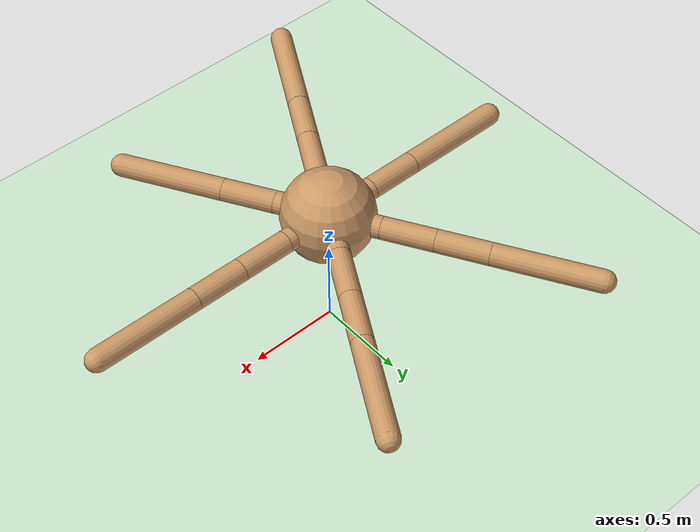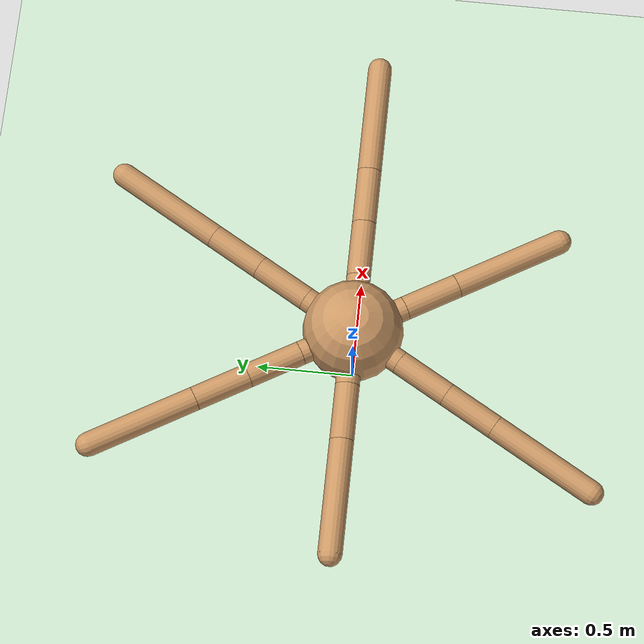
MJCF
<mujoco model="symetric_hexapod">
	<compiler angle="degree" coordinate="local" inertiafromgeom="true"/>
	<option integrator="RK4" timestep="0.01"/>

	<default>
		<joint armature="1" damping="1" limited="true"/>
		<geom conaffinity="0" condim="3" density="5.0" friction="1 0.5 0.5" margin="0.01" rgba="0.8 0.6 0.4 1"/>
	</default>

	<asset>
		<texture builtin="gradient" height="100" rgb1="1 1 1" rgb2="0 0 0" type="skybox" width="100"/>
		<texture builtin="flat" height="1278" mark="cross" markrgb="1 1 1" name="texgeom" random="0.01" rgb1="0.8 0.6 0.4" rgb2="0.8 0.6 0.4" type="cube" width="127"/>
		<texture builtin="checker" height="100" name="texplane" rgb1="1 1 1" rgb2="1 1 1" type="2d" width="100"/>
		<material name="MatPlane" reflectance="0.5" shininess="1" specular="1" texrepeat="60 60" texture="texplane"/>
		<material name="geom" texture="texgeom" texuniform="true"/>
	</asset>

	<worldbody>
		<light cutoff="100" diffuse="1 1 1" dir="-0 0 -1.3" directional="true" exponent="1" pos="0 0 1.3" specular=".1 .1 .1" castshadow="false"/>
		<geom conaffinity="1" condim="3" material="MatPlane" name="floor" pos="0 0 0" rgba="0.8 0.9 0.8 1" size="40 40 40" type="plane"/>

		<body name="torso" pos="0 0 0.75">
			<camera name="track" mode="trackcom" pos="0 -3 0.3" xyaxes="1 0 0 0 0 1"/>
			<geom name="torso_geom" pos="0 0 0" size="0.25" type="sphere"/>
			<joint armature="0" damping="0" limited="false" margin="0.01" name="root" pos="0 0 0" type="free"/>

			<body name="front_left_leg" pos="0 0 0">
				<geom fromto="0.0 0.0 0.0 0.1414 0.2449 0.0" name="leg_base_1" size="0.06" type="capsule"/>
				<body name="aux_1" pos="0.1414 0.2449 0">
					<joint axis="0 0 1" name="hip_1" pos="0.0 0.0 0.0" range="-30 30" type="hinge"/>
					<geom fromto="0.0 0.0 0.0 0.1414 0.2449 0.0" name="leg_geom_1" size="0.06" type="capsule"/>
					<body name="extra_1" pos="0.1414 0.2449 0">
						<joint axis="-1 0.5773 0" name="extra_joint_1" pos="0.0 0.0 0.0" range="-30 30" type="hinge"/>
						<geom fromto="0.0 0.0 0.0 0.1414 0.2449 0.0" name="extra_geom_1" size="0.06" type="capsule"/>
						<body pos="0.1414 0.2449 0">
							<joint axis="-1 0.5773 0" name="ankle_1" pos="0.0 0.0 0.0" range="10 90" type="hinge"/>
							<geom fromto="0.0 0.0 0.0 0.2828 0.4898 0.0" name="ankle_geom_1" size="0.06" type="capsule"/>
						</body>
					</body>
				</body>
			</body>

			<body name="mid_left_leg" pos="0 0 0">
				<geom fromto="0.0 0.0 0.0 0.2828 0.0 0.0" name="leg_base_2" size="0.06" type="capsule"/>
				<body name="aux_2" pos="0.2828 0.0 0">
					<joint axis="0 0 1" name="hip_2" pos="0.0 0.0 0.0" range="-30 30" type="hinge"/>
					<geom fromto="0.0 0.0 0.0 0.2828 0.0 0.0" name="leg_geom_2" size="0.06" type="capsule"/>
					<body name="extra_2" pos="0.2828 0.0 0">
						<joint axis="0 1 0" name="extra_joint_2" pos="0.0 0.0 0.0" range="-30 30" type="hinge"/>
						<geom fromto="0.0 0.0 0.0 0.2828 0.0 0.0" name="extra_geom_2" size="0.06" type="capsule"/>
						<body pos="0.2828 0.0 0">
							<joint axis="0 1 0" name="ankle_2" pos="0.0 0.0 0.0" range="10 90" type="hinge"/>
							<geom fromto="0.0 0.0 0.0 0.5656 0.0 0.0" name="ankle_geom_2" size="0.06" type="capsule"/>
						</body>
					</body>
				</body>
			</body>

			<body name="back_left_leg" pos="0 0 0">
				<geom fromto="0.0 0.0 0.0 0.1414 -0.2449 0.0" name="leg_base_3" size="0.06" type="capsule"/>
				<body name="aux_3" pos="0.1414 -0.2449 0">
					<joint axis="0 0 1" name="hip_3" pos="0.0 0.0 0.0" range="-30 30" type="hinge"/>
					<geom fromto="0.0 0.0 0.0 0.1414 -0.2449 0.0" name="leg_geom_3" size="0.06" type="capsule"/>
					<body pos="0.1414 -0.2449 0">
						<joint axis="1 0.5773 0" name="ankle_3" pos="0.0 0.0 0.0" range="10 90" type="hinge"/>
						<geom fromto="0.0 0.0 0.0 0.2828 -0.4898 0.0" name="ankle_geom_3" size="0.06" type="capsule"/>
					</body>
				</body>
			</body>

			<body name="back_right_leg" pos="0 0 0">
				<geom fromto="0.0 0.0 0.0 -0.1414 -0.2449 0.0" name="leg_base_4" size="0.06" type="capsule"/>
				<body name="aux_4" pos="-0.1414 -0.2449 0">
					<joint axis="0 0 -1" name="hip_4" pos="0.0 0.0 0.0" range="-30 30" type="hinge"/>
					<geom fromto="0.0 0.0 0.0 -0.1414 -0.2449 0.0" name="leg_geom_4" size="0.06" type="capsule"/>
					<body name="extra_3" pos="-0.1414 -0.2449 0">
						<joint axis="1 -0.5773 0" name="extra_joint_3" pos="0.0 0.0 0.0" range="-30 30" type="hinge"/>
						<geom fromto="0.0 0.0 0.0 -0.1414 -0.2449 0.0" name="extra_geom_3" size="0.06" type="capsule"/>
						<body pos="-0.1414 -0.2449 0">
							<joint axis="1 -0.5773 0" name="ankle_4" pos="0.0 0.0 0.0" range="10 90" type="hinge"/>
							<geom fromto="0.0 0.0 0.0 -0.2828 -0.4898 0.0" name="ankle_geom_4" size="0.06" type="capsule"/>
						</body>
					</body>
				</body>
			</body>

			<body name="mid_right_leg" pos="0 0 0">
				<geom fromto="0.0 0.0 0.0 -0.2828 0.0 0.0" name="leg_base_5" size="0.06" type="capsule"/>
				<body name="aux_5" pos="-0.2828 0.0 0">
					<joint axis="0 0 -1" name="hip_5" pos="0.0 0.0 0.0" range="-30 30" type="hinge"/>
					<geom fromto="0.0 0.0 0.0 -0.2828 0.0 0.0" name="leg_geom_5" size="0.06" type="capsule"/>
					<body pos="-0.2828 0.0 0">
						<joint axis="0 -1 0" name="ankle_5" pos="0.0 0.0 0.0" range="10 90" type="hinge"/>
						<geom fromto="0.0 0.0 0.0 -0.5656 0.0 0.0" name="ankle_geom_5" size="0.06" type="capsule"/>
					</body>
				</body>
			</body>

			<body name="front_right_leg" pos="0 0 0">
				<geom fromto="0.0 0.0 0.0 -0.1414 0.2449 0.0" name="leg_base_6" size="0.06" type="capsule"/>
				<body name="aux_6" pos="-0.1414 0.2449 0">
					<joint axis="0 0 -1" name="hip_6" pos="0.0 0.0 0.0" range="-30 30" type="hinge"/>
					<geom fromto="0.0 0.0 0.0 -0.1414 0.2449 0.0" name="leg_geom_6" size="0.06" type="capsule"/>
					<body name="extra_4" pos="-0.1414 0.2449 0">
						<joint axis="-1 -0.5773 0" name="extra_joint_4" pos="0.0 0.0 0.0" range="-30 30" type="hinge"/>
						<geom fromto="0.0 0.0 0.0 -0.1414 0.2449 0.0" name="extra_geom_4" size="0.06" type="capsule"/>
						<body pos="-0.1414 0.2449 0">
							<joint axis="-1 -0.5773 0" name="ankle_6" pos="0.0 0.0 0.0" range="10 90" type="hinge"/>
							<geom fromto="0.0 0.0 0.0 -0.2828 0.4898 0.0" name="ankle_geom_6" size="0.06" type="capsule"/>
						</body>
					</body>
				</body>
			</body>

		</body>
	</worldbody>

	<actuator>
		<motor ctrllimited="true" ctrlrange="-1.0 1.0" joint="hip_1" gear="150"/>
		<motor ctrllimited="true" ctrlrange="-1.0 1.0" joint="extra_joint_1" gear="150"/>
		<motor ctrllimited="true" ctrlrange="-1.0 1.0" joint="ankle_1" gear="150"/>

		<motor ctrllimited="true" ctrlrange="-1.0 1.0" joint="hip_2" gear="150"/>
		<motor ctrllimited="true" ctrlrange="-1.0 1.0" joint="extra_joint_2" gear="150"/>
		<motor ctrllimited="true" ctrlrange="-1.0 1.0" joint="ankle_2" gear="150"/>

		<motor ctrllimited="true" ctrlrange="-1.0 1.0" joint="hip_3" gear="150"/>
		<motor ctrllimited="true" ctrlrange="-1.0 1.0" joint="ankle_3" gear="150"/>

		<motor ctrllimited="true" ctrlrange="-1.0 1.0" joint="hip_4" gear="150"/>
		<motor ctrllimited="true" ctrlrange="-1.0 1.0" joint="extra_joint_3" gear="150"/>
		<motor ctrllimited="true" ctrlrange="-1.0 1.0" joint="ankle_4" gear="150"/>

		<motor ctrllimited="true" ctrlrange="-1.0 1.0" joint="hip_5" gear="150"/>
		<motor ctrllimited="true" ctrlrange="-1.0 1.0" joint="ankle_5" gear="150"/>

		<motor ctrllimited="true" ctrlrange="-1.0 1.0" joint="hip_6" gear="150"/>
		<motor ctrllimited="true" ctrlrange="-1.0 1.0" joint="extra_joint_4" gear="150"/>
		<motor ctrllimited="true" ctrlrange="-1.0 1.0" joint="ankle_6" gear="150"/>
	</actuator>

</mujoco>
